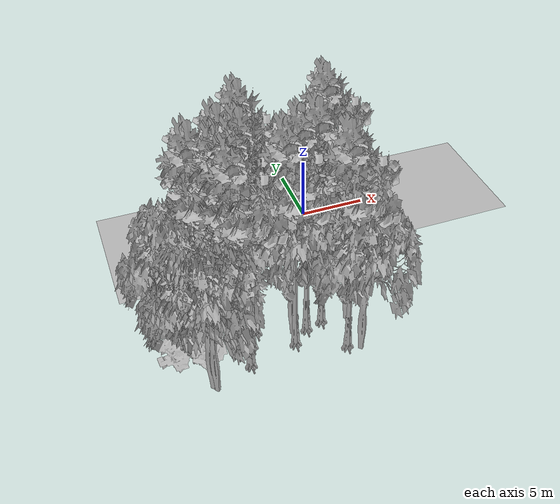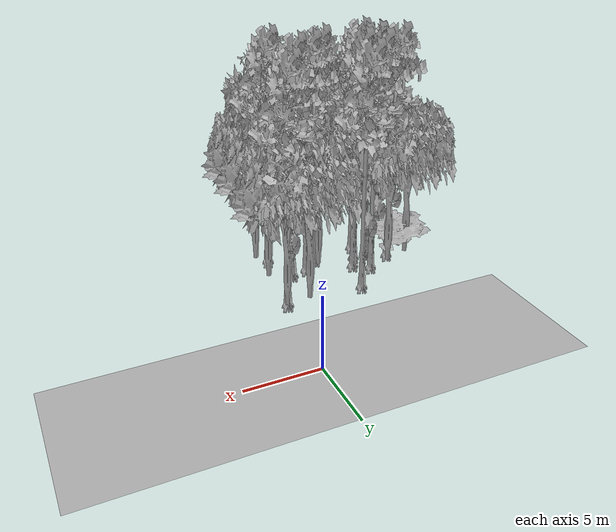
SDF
<sdf version="1.7">
 <world name="default">
  <model name="ground_plane">
   <static>1</static>
   <link name="link">
    <collision name="collision">
     <pose>-50 0 0 0 -0 0</pose>
     <geometry><plane><normal>0 0 1</normal><size>100 100</size></plane></geometry>
     <surface><contact><ode><min_depth>0.01</min_depth><max_vel>0</max_vel></ode></contact></surface>
    </collision>
    <visual name="grass">
     <cast_shadows>0</cast_shadows>
     <geometry>
      <mesh>
       <scale>0.5814285714285714 0.18142857142857144 0.1</scale>
       <uri>file://grass_plane/meshes/grass_plane.dae</uri>
      </mesh>
     </geometry>
    </visual>
   </link>
  </model>
  <model name="Tree 21">
   <static>1</static>
   <pose>-5.244288710583049 -12.456172280738432 0 1.57079 -0 0</pose>
   <link name="link">
    <collision name="collision">
     <geometry><mesh><scale>3.5 5 3.5</scale><uri>model://tree_9/meshes/tree_9.obj</uri></mesh></geometry>
    </collision>
    <visual name="visual">
     <geometry><mesh><scale>3.5 5 3.5</scale><uri>model://tree_9/meshes/tree_9.obj</uri></mesh></geometry>
    </visual>
   </link>
  </model>
  <model name="Tree 38">
   <static>1</static>
   <pose>-1.450514391069035 -14.540628486420221 0 1.57079 -0 0</pose>
   <link name="link">
    <collision name="collision">
     <geometry><mesh><scale>3.5 5 3.5</scale><uri>model://tree_2/meshes/tree_2.obj</uri></mesh></geometry>
    </collision>
    <visual name="visual">
     <geometry><mesh><scale>3.5 5 3.5</scale><uri>model://tree_2/meshes/tree_2.obj</uri></mesh></geometry>
    </visual>
   </link>
  </model>
  <model name="Tree 47">
   <static>1</static>
   <pose>-11.340149850533386 -14.591461262876273 0 1.57079 -0 0</pose>
   <link name="link">
    <collision name="collision">
     <geometry><mesh><scale>3.5 5 3.5</scale><uri>model://tree_2/meshes/tree_2.obj</uri></mesh></geometry>
    </collision>
    <visual name="visual">
     <geometry><mesh><scale>3.5 5 3.5</scale><uri>model://tree_2/meshes/tree_2.obj</uri></mesh></geometry>
    </visual>
   </link>
  </model>
  <model name="Tree 60">
   <static>1</static>
   <pose>-5.2610322820203805 -11.72304628589248 0 1.57079 -0 0</pose>
   <link name="link">
    <collision name="collision">
     <geometry><mesh><scale>3.5 5 3.5</scale><uri>model://tree_2/meshes/tree_2.obj</uri></mesh></geometry>
    </collision>
    <visual name="visual">
     <geometry><mesh><scale>3.5 5 3.5</scale><uri>model://tree_2/meshes/tree_2.obj</uri></mesh></geometry>
    </visual>
   </link>
  </model>
  <model name="Tree 75">
   <static>1</static>
   <pose>-8.51237406635179 -9.825266419108196 0 1.57079 -0 0</pose>
   <link name="link">
    <collision name="collision">
     <geometry><mesh><scale>3.5 5 3.5</scale><uri>model://tree_9/meshes/tree_9.obj</uri></mesh></geometry>
    </collision>
    <visual name="visual">
     <geometry><mesh><scale>3.5 5 3.5</scale><uri>model://tree_9/meshes/tree_9.obj</uri></mesh></geometry>
    </visual>
   </link>
  </model>
  <model name="Tree 76">
   <static>1</static>
   <pose>-6.635409642414942 -7.6614869023768595 0 1.57079 -0 0</pose>
   <link name="link">
    <collision name="collision">
     <geometry><mesh><scale>3.5 5 3.5</scale><uri>model://tree_9/meshes/tree_9.obj</uri></mesh></geometry>
    </collision>
    <visual name="visual">
     <geometry><mesh><scale>3.5 5 3.5</scale><uri>model://tree_9/meshes/tree_9.obj</uri></mesh></geometry>
    </visual>
   </link>
  </model>
  <model name="Tree 99">
   <static>1</static>
   <pose>-9.193329285281521 -11.929071543344504 0 1.57079 -0 0</pose>
   <link name="link">
    <collision name="collision">
     <geometry><mesh><scale>3.5 5 3.5</scale><uri>model://tree_9/meshes/tree_9.obj</uri></mesh></geometry>
    </collision>
    <visual name="visual">
     <geometry><mesh><scale>3.5 5 3.5</scale><uri>model://tree_9/meshes/tree_9.obj</uri></mesh></geometry>
    </visual>
   </link>
  </model>
  <model name="Tree 101">
   <static>1</static>
   <pose>-2.7842763088680513 -7.7225261226052675 0 1.57079 -0 0</pose>
   <link name="link">
    <collision name="collision">
     <geometry><mesh><scale>3.5 5 3.5</scale><uri>model://tree_2/meshes/tree_2.obj</uri></mesh></geometry>
    </collision>
    <visual name="visual">
     <geometry><mesh><scale>3.5 5 3.5</scale><uri>model://tree_2/meshes/tree_2.obj</uri></mesh></geometry>
    </visual>
   </link>
  </model>
  <model name="Tree 115">
   <static>1</static>
   <pose>-7.446401476906949 -10.626989928416037 0 1.57079 -0 0</pose>
   <link name="link">
    <collision name="collision">
     <geometry><mesh><scale>3.5 5 3.5</scale><uri>model://tree_9/meshes/tree_9.obj</uri></mesh></geometry>
    </collision>
    <visual name="visual">
     <geometry><mesh><scale>3.5 5 3.5</scale><uri>model://tree_9/meshes/tree_9.obj</uri></mesh></geometry>
    </visual>
   </link>
  </model>
  <model name="Tree 174">
   <static>1</static>
   <pose>-12.011472719715478 -11.878946606821223 0 1.57079 -0 0</pose>
   <link name="link">
    <collision name="collision">
     <geometry><mesh><scale>3 2 3</scale><uri>model://tree_3/meshes/tree_3.obj</uri></mesh></geometry>
    </collision>
    <visual name="visual">
     <geometry><mesh><scale>3 2 3</scale><uri>model://tree_3/meshes/tree_3.obj</uri></mesh></geometry>
    </visual>
   </link>
  </model>
  <model name="Tree 194">
   <static>1</static>
   <pose>-9.093060875010941 -11.781699598189148 0 1.57079 -0 0</pose>
   <link name="link">
    <collision name="collision">
     <geometry><mesh><scale>3.5 5 3.5</scale><uri>model://tree_9/meshes/tree_9.obj</uri></mesh></geometry>
    </collision>
    <visual name="visual">
     <geometry><mesh><scale>3.5 5 3.5</scale><uri>model://tree_9/meshes/tree_9.obj</uri></mesh></geometry>
    </visual>
   </link>
  </model>
  <model name="Tree 210">
   <static>1</static>
   <pose>-8.628760696745083 -13.230736531345546 0 1.57079 -0 0</pose>
   <link name="link">
    <collision name="collision">
     <geometry><mesh><scale>3.5 5 3.5</scale><uri>model://tree_9/meshes/tree_9.obj</uri></mesh></geometry>
    </collision>
    <visual name="visual">
     <geometry><mesh><scale>3.5 5 3.5</scale><uri>model://tree_9/meshes/tree_9.obj</uri></mesh></geometry>
    </visual>
   </link>
  </model>
  <model name="Tree 216">
   <static>1</static>
   <pose>-4.094437193311762 -11.486647552569494 0 1.57079 -0 0</pose>
   <link name="link">
    <collision name="collision">
     <geometry><mesh><scale>3.5 5 3.5</scale><uri>model://tree_9/meshes/tree_9.obj</uri></mesh></geometry>
    </collision>
    <visual name="visual">
     <geometry><mesh><scale>3.5 5 3.5</scale><uri>model://tree_9/meshes/tree_9.obj</uri></mesh></geometry>
    </visual>
   </link>
  </model>
  <model name="Tree 219">
   <static>1</static>
   <pose>-12.01215661221125 -10.78864690001782 0 1.57079 -0 0</pose>
   <link name="link">
    <collision name="collision">
     <geometry><mesh><scale>3.5 5 3.5</scale><uri>model://tree_2/meshes/tree_2.obj</uri></mesh></geometry>
    </collision>
    <visual name="visual">
     <geometry><mesh><scale>3.5 5 3.5</scale><uri>model://tree_2/meshes/tree_2.obj</uri></mesh></geometry>
    </visual>
   </link>
  </model>
  <model name="Tree 233">
   <static>1</static>
   <pose>-1.3427816848899212 -11.661853517957939 0 1.57079 -0 0</pose>
   <link name="link">
    <collision name="collision">
     <geometry><mesh><scale>3.5 5 3.5</scale><uri>model://tree_2/meshes/tree_2.obj</uri></mesh></geometry>
    </collision>
    <visual name="visual">
     <geometry><mesh><scale>3.5 5 3.5</scale><uri>model://tree_2/meshes/tree_2.obj</uri></mesh></geometry>
    </visual>
   </link>
  </model>
  <model name="Tree 262">
   <static>1</static>
   <pose>-11.543247619113494 -14.309863500789605 0 1.57079 -0 0</pose>
   <link name="link">
    <collision name="collision">
     <geometry><mesh><scale>3.5 5 3.5</scale><uri>model://tree_2/meshes/tree_2.obj</uri></mesh></geometry>
    </collision>
    <visual name="visual">
     <geometry><mesh><scale>3.5 5 3.5</scale><uri>model://tree_2/meshes/tree_2.obj</uri></mesh></geometry>
    </visual>
   </link>
  </model>
  <model name="Tree 350">
   <static>1</static>
   <pose>-10.479365217669766 -10.990838404685352 0 1.57079 -0 0</pose>
   <link name="link">
    <collision name="collision">
     <geometry><mesh><scale>3.5 5 3.5</scale><uri>model://tree_9/meshes/tree_9.obj</uri></mesh></geometry>
    </collision>
    <visual name="visual">
     <geometry><mesh><scale>3.5 5 3.5</scale><uri>model://tree_9/meshes/tree_9.obj</uri></mesh></geometry>
    </visual>
   </link>
  </model>
  <model name="Tree 396">
   <static>1</static>
   <pose>-10.160312717909392 -10.12213282365468 0 1.57079 -0 0</pose>
   <link name="link">
    <collision name="collision">
     <geometry><mesh><scale>3.5 5 3.5</scale><uri>model://tree_2/meshes/tree_2.obj</uri></mesh></geometry>
    </collision>
    <visual name="visual">
     <geometry><mesh><scale>3.5 5 3.5</scale><uri>model://tree_2/meshes/tree_2.obj</uri></mesh></geometry>
    </visual>
   </link>
  </model>
  <model name="Tree 434">
   <static>1</static>
   <pose>-1.0639676014783106 -7.549293705458275 0 1.57079 -0 0</pose>
   <link name="link">
    <collision name="collision">
     <geometry><mesh><scale>3.5 5 3.5</scale><uri>model://tree_2/meshes/tree_2.obj</uri></mesh></geometry>
    </collision>
    <visual name="visual">
     <geometry><mesh><scale>3.5 5 3.5</scale><uri>model://tree_2/meshes/tree_2.obj</uri></mesh></geometry>
    </visual>
   </link>
  </model>
  <model name="Tree 466">
   <static>1</static>
   <pose>-8.072859964644834 -11.706719287708355 0 1.57079 -0 0</pose>
   <link name="link">
    <collision name="collision">
     <geometry><mesh><scale>3.5 5 3.5</scale><uri>model://tree_9/meshes/tree_9.obj</uri></mesh></geometry>
    </collision>
    <visual name="visual">
     <geometry><mesh><scale>3.5 5 3.5</scale><uri>model://tree_9/meshes/tree_9.obj</uri></mesh></geometry>
    </visual>
   </link>
  </model>
  <model name="Tree 512">
   <static>1</static>
   <pose>-2.0567031372489737 -13.878488434898637 0 1.57079 -0 0</pose>
   <link name="link">
    <collision name="collision">
     <geometry><mesh><scale>3.5 5 3.5</scale><uri>model://tree_9/meshes/tree_9.obj</uri></mesh></geometry>
    </collision>
    <visual name="visual">
     <geometry><mesh><scale>3.5 5 3.5</scale><uri>model://tree_9/meshes/tree_9.obj</uri></mesh></geometry>
    </visual>
   </link>
  </model>
  <model name="Tree 520">
   <static>1</static>
   <pose>-1.0149604074802525 -7.637850500958098 0 1.57079 -0 0</pose>
   <link name="link">
    <collision name="collision">
     <geometry><mesh><scale>3.5 5 3.5</scale><uri>model://tree_9/meshes/tree_9.obj</uri></mesh></geometry>
    </collision>
    <visual name="visual">
     <geometry><mesh><scale>3.5 5 3.5</scale><uri>model://tree_9/meshes/tree_9.obj</uri></mesh></geometry>
    </visual>
   </link>
  </model>
  <model name="Tree 524">
   <static>1</static>
   <pose>-2.8783304223847352 -11.152531675847257 0 1.57079 -0 0</pose>
   <link name="link">
    <collision name="collision">
     <geometry><mesh><scale>3.5 5 3.5</scale><uri>model://tree_9/meshes/tree_9.obj</uri></mesh></geometry>
    </collision>
    <visual name="visual">
     <geometry><mesh><scale>3.5 5 3.5</scale><uri>model://tree_9/meshes/tree_9.obj</uri></mesh></geometry>
    </visual>
   </link>
  </model>
 </world>
</sdf>
